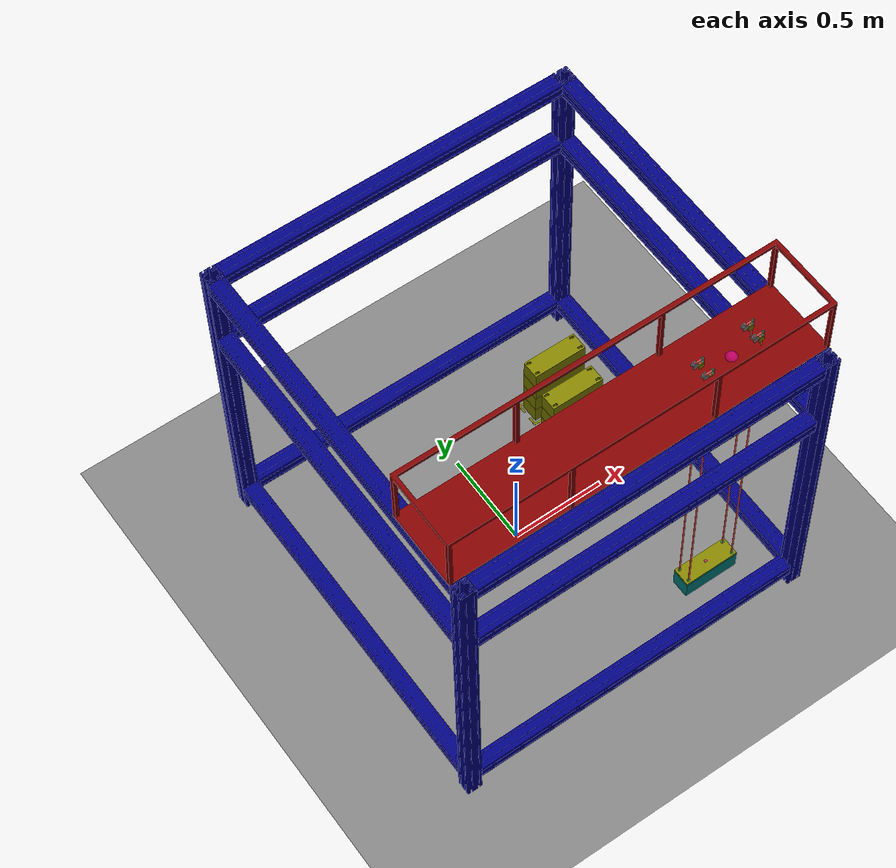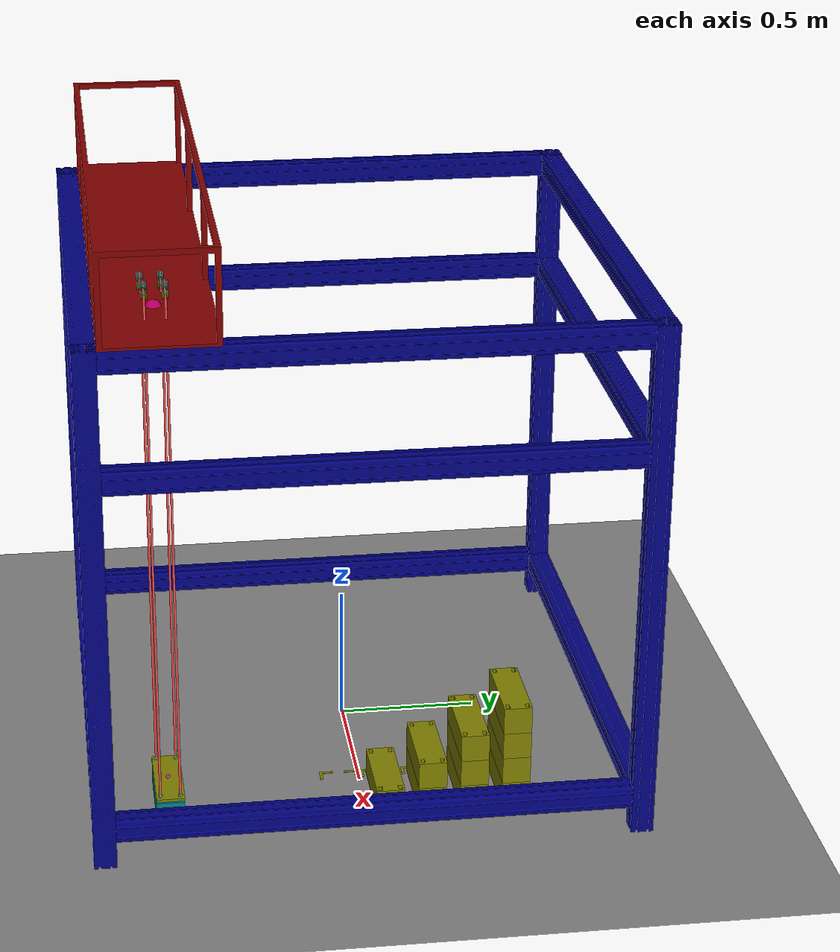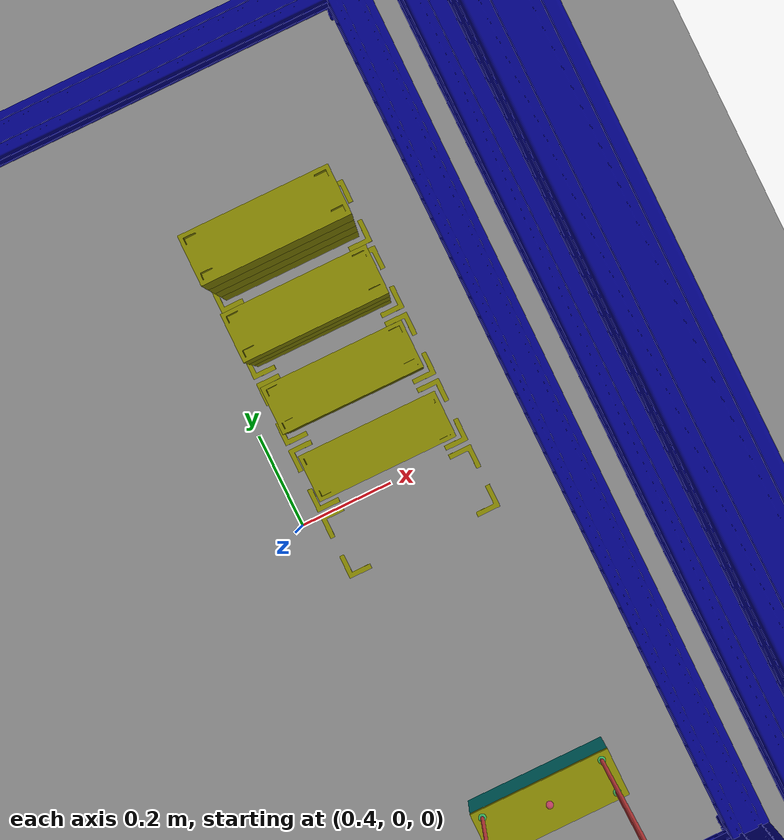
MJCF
<?xml version="1.0" encoding="utf-8"?>
<mujoco model="qc_anti_sway_alignment">
  <compiler angle="radian" meshdir="meshes" autolimits="true"/>
  <option timestep="0.002" gravity="0 0 -9.81" wind="0 0 0" integrator="implicitfast" density="1.225" viscosity="1.8e-5"/>
  <visual>
    <global realtime="1"/>
    <quality shadowsize="16384" numslices="28" offsamples="4"/>
    <headlight diffuse="1 1 1" specular="0.5 0.5 0.5" active="1"/>
    <rgba fog="1 0 0 1" haze="1 1 1 1"/>
  </visual>
  <asset>
    <texture name="plane" type="2d" builtin="checker" rgb1=".1 .1 .1" rgb2=".9 .9 .9" width="512" height="512" mark="cross" markrgb=".8 .8 .8"/>
    <material name="plane" reflectance="0.3" texture="plane" texrepeat="1 1" texuniform="true"/>
    <material name="box" rgba="0 0.5 0 1" emission="0"/>
    <!-- gantry -->
    <mesh name="gantry - 8080-L1800-3_mesh" file="gantry - 8080-L1800-3.STL" scale="1 1 1"/>
    <mesh name="gantry - 8080-L1800-1_mesh" file="gantry - 8080-L1800-1.STL" scale="1 1 1"/>
    <mesh name="gantry - 8080-L1800-6_mesh" file="gantry - 8080-L1800-6.STL" scale="1 1 1"/>
    <mesh name="gantry - 8080-L1800-12_mesh" file="gantry - 8080-L1800-12.STL" scale="1 1 1"/>
    <mesh name="gantry - 8080-L1900-2_mesh" file="gantry - 8080-L1900-2.STL" scale="1 1 1"/>
    <mesh name="gantry - 8080-L1800-9_mesh" file="gantry - 8080-L1800-9.STL" scale="1 1 1"/>
    <mesh name="gantry - 8080-L1800-2_mesh" file="gantry - 8080-L1800-2.STL" scale="1 1 1"/>
    <mesh name="gantry - 8080-L1900-1_mesh" file="gantry - 8080-L1900-1.STL" scale="1 1 1"/>
    <mesh name="gantry - 8080-L1800-5_mesh" file="gantry - 8080-L1800-5.STL" scale="1 1 1"/>
    <mesh name="gantry - 8080-L1900-3_mesh" file="gantry - 8080-L1900-3.STL" scale="1 1 1"/>
    <mesh name="gantry - 8080-L1800-11_mesh" file="gantry - 8080-L1800-11.STL" scale="1 1 1"/>
    <mesh name="gantry - 8080-L1900-4_mesh" file="gantry - 8080-L1900-4.STL" scale="1 1 1"/>
    <mesh name="gantry - 8080-L1800-8_mesh" file="gantry - 8080-L1800-8.STL" scale="1 1 1"/>
    <mesh name="gantry - 8080-L1800-4_mesh" file="gantry - 8080-L1800-4.STL" scale="1 1 1"/>
    <mesh name="gantry - 8080-L1800-10_mesh" file="gantry - 8080-L1800-10.STL" scale="1 1 1"/>
    <mesh name="gantry - 8080-L1800-7_mesh" file="gantry - 8080-L1800-7.STL" scale="1 1 1"/>
    <!-- trolley -->
    <mesh name="trolley - pulley-2_mesh" file="trolley - pulley-2.STL" scale="1 1 1"/>
    <mesh name="trolley - trolley_plane-1_mesh" file="trolley - trolley_plane-1.STL" scale="1 1 1"/>
    <mesh name="trolley - trolley_anchor_ball-2_mesh" file="trolley - trolley_anchor_ball-2.STL" scale="1 1 1"/>
    <mesh name="trolley - pulley-6_mesh" file="trolley - pulley-6.STL" scale="1 1 1"/>
    <mesh name="trolley - trolley_anchor_ball-3_mesh" file="trolley - trolley_anchor_ball-3.STL" scale="1 1 1"/>
    <mesh name="trolley - trolley_anchor_ball-4_mesh" file="trolley - trolley_anchor_ball-4.STL" scale="1 1 1"/>
    <mesh name="trolley - pulley-8_mesh" file="trolley - pulley-8.STL" scale="1 1 1"/>
    <mesh name="trolley - pulley-4_mesh" file="trolley - pulley-4.STL" scale="1 1 1"/>
    <mesh name="trolley - pulley-3_mesh" file="trolley - pulley-3.STL" scale="1 1 1"/>
    <mesh name="trolley - pulley-1_mesh" file="trolley - pulley-1.STL" scale="1 1 1"/>
    <mesh name="trolley - pulley-5_mesh" file="trolley - pulley-5.STL" scale="1 1 1"/>
    <mesh name="trolley - pulley-7_mesh" file="trolley - pulley-7.STL" scale="1 1 1"/>
    <mesh name="trolley - trolley_anchor_ball-1_mesh" file="trolley - trolley_anchor_ball-1.STL" scale="1 1 1"/>
    <!-- spreader -->
    <mesh name="spreader - spreader_plane-1_mesh" file="spreader - spreader_plane-1.STL" scale="1 1 1"/>
    <mesh name="spreader - spreader_anchor_ball-1_mesh" file="spreader - spreader_anchor_ball-1.STL" scale="1 1 1"/>
    <mesh name="spreader - spreader_anchor_ball-3_mesh" file="spreader - spreader_anchor_ball-3.STL" scale="1 1 1"/>
    <mesh name="spreader - container-1_mesh" file="spreader - container-1.STL" scale="1 1 1"/>
    <mesh name="spreader - spreader_anchor_ball-4_mesh" file="spreader - spreader_anchor_ball-4.STL" scale="1 1 1"/>
    <mesh name="spreader - spreader_anchor_ball-2_mesh" file="spreader - spreader_anchor_ball-2.STL" scale="1 1 1"/>
    <!-- container_stack -->
    <mesh name="container_stack - L-Marker-26_mesh" file="container_stack - L-Marker-26.STL" scale="1 1 1"/>
    <mesh name="container_stack - L-Marker-31_mesh" file="container_stack - L-Marker-31.STL" scale="1 1 1"/>
    <mesh name="container_stack - L-Marker-1_mesh" file="container_stack - L-Marker-1.STL" scale="1 1 1"/>
    <mesh name="container_stack - L-Marker-22_mesh" file="container_stack - L-Marker-22.STL" scale="1 1 1"/>
    <mesh name="container_stack - L-Marker-24_mesh" file="container_stack - L-Marker-24.STL" scale="1 1 1"/>
    <mesh name="container_stack - L-Marker-34_mesh" file="container_stack - L-Marker-34.STL" scale="1 1 1"/>
    <mesh name="container_stack - container-8_mesh" file="container_stack - container-8.STL" scale="1 1 1"/>
    <mesh name="container_stack - container-1_mesh" file="container_stack - container-1.STL" scale="1 1 1"/>
    <mesh name="container_stack - container-10_mesh" file="container_stack - container-10.STL" scale="1 1 1"/>
    <mesh name="container_stack - L-Marker-30_mesh" file="container_stack - L-Marker-30.STL" scale="1 1 1"/>
    <mesh name="container_stack - container-3_mesh" file="container_stack - container-3.STL" scale="1 1 1"/>
    <mesh name="container_stack - L-Marker-32_mesh" file="container_stack - L-Marker-32.STL" scale="1 1 1"/>
    <mesh name="container_stack - L-Marker-35_mesh" file="container_stack - L-Marker-35.STL" scale="1 1 1"/>
    <mesh name="container_stack - L-Marker-27_mesh" file="container_stack - L-Marker-27.STL" scale="1 1 1"/>
    <mesh name="container_stack - container-9_mesh" file="container_stack - container-9.STL" scale="1 1 1"/>
    <mesh name="container_stack - L-Marker-4_mesh" file="container_stack - L-Marker-4.STL" scale="1 1 1"/>
    <mesh name="container_stack - container-2_mesh" file="container_stack - container-2.STL" scale="1 1 1"/>
    <mesh name="container_stack - container-7_mesh" file="container_stack - container-7.STL" scale="1 1 1"/>
    <mesh name="container_stack - L-Marker-36_mesh" file="container_stack - L-Marker-36.STL" scale="1 1 1"/>
    <mesh name="container_stack - L-Marker-28_mesh" file="container_stack - L-Marker-28.STL" scale="1 1 1"/>
    <mesh name="container_stack - L-Marker-23_mesh" file="container_stack - L-Marker-23.STL" scale="1 1 1"/>
    <mesh name="container_stack - container-4_mesh" file="container_stack - container-4.STL" scale="1 1 1"/>
    <mesh name="container_stack - L-Marker-29_mesh" file="container_stack - L-Marker-29.STL" scale="1 1 1"/>
    <mesh name="container_stack - L-Marker-33_mesh" file="container_stack - L-Marker-33.STL" scale="1 1 1"/>
    <mesh name="container_stack - L-Marker-25_mesh" file="container_stack - L-Marker-25.STL" scale="1 1 1"/>
    <mesh name="container_stack - L-Marker-3_mesh" file="container_stack - L-Marker-3.STL" scale="1 1 1"/>
    <mesh name="container_stack - L-Marker-2_mesh" file="container_stack - L-Marker-2.STL" scale="1 1 1"/>
    <mesh name="container_stack - container-5_mesh" file="container_stack - container-5.STL" scale="1 1 1"/>
    <mesh name="container_stack - L-Marker-21_mesh" file="container_stack - L-Marker-21.STL" scale="1 1 1"/>
    <mesh name="container_stack - container-6_mesh" file="container_stack - container-6.STL" scale="1 1 1"/>
  </asset>
  <default>
    <geom solref=".5e-4" solimp="0.9 0.99 1e-4" fluidcoef="0.5 0.25 0.5 2.0 1.0"/>
    <default class="card">
      <geom type="mesh" mesh="card" mass="1.84e-4" fluidshape="ellipsoid" contype="0" conaffinity="0"/>
    </default>
    <default class="collision">
      <geom type="box" mass="0" size="0.047 0.032 .00035" group="3" friction=".1"/>
    </default>
  </default>
  <worldbody>
    <geom name="floor" pos="0 0 0" size="10 10 .1" type="plane" material="plane" condim="3"/>
    <light directional="true" ambient=".3 .3 .3" pos="30 30 30" dir="0 -2 -1" diffuse=".5 .5 .5" specular=".5 .5 .5"/>
    <body name="gantry" pos="0 0 0">
      <body name="part_00_gantry - 8080-L1800-3" pos="0 0 0" euler="0 0 0">
        <geom name="geom_00_gantry - 8080-L1800-3" type="mesh" mesh="gantry - 8080-L1800-3_mesh" pos="0 0 0" mass="8.20643687132272" rgba="0 0 0.5 1"/>
      </body>
      <body name="part_01_gantry - 8080-L1800-1" pos="0 0 0" euler="0 0 0">
        <geom name="geom_01_gantry - 8080-L1800-1" type="mesh" mesh="gantry - 8080-L1800-1_mesh" pos="0 0 0" mass="8.206436440465545" rgba="0 0 0.5 1"/>
      </body>
      <body name="part_02_gantry - 8080-L1800-6" pos="0 0 0" euler="0 0 0">
        <geom name="geom_02_gantry - 8080-L1800-6" type="mesh" mesh="gantry - 8080-L1800-6_mesh" pos="0 0 0" mass="8.206435252381262" rgba="0 0 0.5 1"/>
      </body>
      <body name="part_03_gantry - 8080-L1800-12" pos="0 0 0" euler="0 0 0">
        <geom name="geom_03_gantry - 8080-L1800-12" type="mesh" mesh="gantry - 8080-L1800-12_mesh" pos="0 0 0" mass="8.206435837031654" rgba="0 0 0.5 1"/>
      </body>
      <body name="part_04_gantry - 8080-L1900-2" pos="0 0 0" euler="0 0 0">
        <geom name="geom_04_gantry - 8080-L1900-2" type="mesh" mesh="gantry - 8080-L1900-2_mesh" pos="0 0 0" mass="8.662366448847159" rgba="0 0 0.5 1"/>
      </body>
      <body name="part_05_gantry - 8080-L1800-9" pos="0 0 0" euler="0 0 0">
        <geom name="geom_05_gantry - 8080-L1800-9" type="mesh" mesh="gantry - 8080-L1800-9_mesh" pos="0 0 0" mass="8.206435406205692" rgba="0 0 0.5 1"/>
      </body>
      <body name="part_06_gantry - 8080-L1800-2" pos="0 0 0" euler="0 0 0">
        <geom name="geom_06_gantry - 8080-L1800-2" type="mesh" mesh="gantry - 8080-L1800-2_mesh" pos="0 0 0" mass="8.20643687132272" rgba="0 0 0.5 1"/>
      </body>
      <body name="part_07_gantry - 8080-L1900-1" pos="0 0 0" euler="0 0 0">
        <geom name="geom_07_gantry - 8080-L1900-1" type="mesh" mesh="gantry - 8080-L1900-1_mesh" pos="0 0 0" mass="8.662366448847159" rgba="0 0 0.5 1"/>
      </body>
      <body name="part_08_gantry - 8080-L1800-5" pos="0 0 0" euler="0 0 0">
        <geom name="geom_08_gantry - 8080-L1800-5" type="mesh" mesh="gantry - 8080-L1800-5_mesh" pos="0 0 0" mass="8.206434821520842" rgba="0 0 0.5 1"/>
      </body>
      <body name="part_09_gantry - 8080-L1900-3" pos="0 0 0" euler="0 0 0">
        <geom name="geom_09_gantry - 8080-L1900-3" type="mesh" mesh="gantry - 8080-L1900-3_mesh" pos="0 0 0" mass="8.662366448847159" rgba="0 0 0.5 1"/>
      </body>
      <body name="part_10_gantry - 8080-L1800-11" pos="0 0 0" euler="0 0 0">
        <geom name="geom_10_gantry - 8080-L1800-11" type="mesh" mesh="gantry - 8080-L1800-11_mesh" pos="0 0 0" mass="8.206435406205692" rgba="0 0 0.5 1"/>
      </body>
      <body name="part_11_gantry - 8080-L1900-4" pos="0 0 0" euler="0 0 0">
        <geom name="geom_11_gantry - 8080-L1900-4" type="mesh" mesh="gantry - 8080-L1900-4_mesh" pos="0 0 0" mass="8.662366448847159" rgba="0 0 0.5 1"/>
      </body>
      <body name="part_12_gantry - 8080-L1800-8" pos="0 0 0" euler="0 0 0">
        <geom name="geom_12_gantry - 8080-L1800-8" type="mesh" mesh="gantry - 8080-L1800-8_mesh" pos="0 0 0" mass="8.206435252381262" rgba="0 0 0.5 1"/>
      </body>
      <body name="part_13_gantry - 8080-L1800-4" pos="0 0 0" euler="0 0 0">
        <geom name="geom_13_gantry - 8080-L1800-4" type="mesh" mesh="gantry - 8080-L1800-4_mesh" pos="0 0 0" mass="8.206436440465545" rgba="0 0 0.5 1"/>
      </body>
      <body name="part_14_gantry - 8080-L1800-10" pos="0 0 0" euler="0 0 0">
        <geom name="geom_14_gantry - 8080-L1800-10" type="mesh" mesh="gantry - 8080-L1800-10_mesh" pos="0 0 0" mass="8.206435837031654" rgba="0 0 0.5 1"/>
      </body>
      <body name="part_15_gantry - 8080-L1800-7" pos="0 0 0" euler="0 0 0">
        <geom name="geom_15_gantry - 8080-L1800-7" type="mesh" mesh="gantry - 8080-L1800-7_mesh" pos="0 0 0" mass="8.206434821520842" rgba="0 0 0.5 1"/>
      </body>
      <body name="trolley" pos="0 -0.7 1.9">
        <joint type="slide" name="trolley_joint" pos="0 0 0" axis="0 1 0" damping="0.2" frictionloss="0" stiffness="0" range="-0.08 1.48"/>
        <body name="part_00_trolley - pulley-2" pos="0 0 0" euler="0 0 0">
          <geom name="geom_00_trolley - pulley-2" type="mesh" mesh="trolley - pulley-2_mesh" pos="0 0 0" mass="0.027111797859617568" rgba="0.5 0.5 0 1"/>
        </body>
        <body name="part_01_trolley - trolley_plane-1" pos="0 0 0" euler="0 0 0">
          <geom name="geom_01_trolley - trolley_plane-1" type="mesh" mesh="trolley - trolley_plane-1_mesh" pos="0 0 0" mass="28.76275760652507" rgba="0.5 0 0 1"/>
        </body>
        <body name="part_02_trolley - trolley_anchor_ball-2" pos="0 0 0" euler="0 0 0">
          <geom name="geom_02_trolley - trolley_anchor_ball-2" type="mesh" mesh="trolley - trolley_anchor_ball-2_mesh" pos="0 0 0" mass="0.0014100498050014054" rgba="0.5 0 0 1"/>
        </body>

        <body name="part_04_trolley - trolley_anchor_ball-3" pos="0 0 0" euler="0 0 0">
          <geom name="geom_04_trolley - trolley_anchor_ball-3" type="mesh" mesh="trolley - trolley_anchor_ball-3_mesh" pos="0 0 0" mass="0.0014100497818406016" rgba="0.5 0 0 1"/>
        </body>
        <body name="part_05_trolley - trolley_anchor_ball-4" pos="0 0 0" euler="0 0 0">
          <geom name="geom_05_trolley - trolley_anchor_ball-4" type="mesh" mesh="trolley - trolley_anchor_ball-4_mesh" pos="0 0 0" mass="0.001410049782437572" rgba="0.5 0 0 1"/>
        </body>

        <body name="part_07_trolley - pulley-4" pos="0 0 0" euler="0 0 0">
          <geom name="geom_07_trolley - pulley-4" type="mesh" mesh="trolley - pulley-4_mesh" pos="0 0 0" mass="0.027111794590652136" rgba="0.5 0.5 0 1"/>
        </body>
        <body name="part_08_trolley - pulley-3" pos="0 0 0" euler="0 0 0">
          <geom name="geom_08_trolley - pulley-3" type="mesh" mesh="trolley - pulley-3_mesh" pos="0 0 0" mass="0.027111794594472015" rgba="0.5 0.5 0 1"/>
        </body>
        <body name="part_09_trolley - pulley-1" pos="0 0 0" euler="0 0 0">
          <geom name="geom_09_trolley - pulley-1" type="mesh" mesh="trolley - pulley-1_mesh" pos="0 0 0" mass="0.027111797863437353" rgba="0.5 0.5 0 1"/>
        </body>

        <body name="part_12_trolley - trolley_anchor_ball-1" pos="0 0 0" euler="0 0 0">
          <geom name="geom_12_trolley - trolley_anchor_ball-1" type="mesh" mesh="trolley - trolley_anchor_ball-1_mesh" pos="0 0 0" mass="0.0014100498021130147" rgba="0.5 0 0 1"/>
        </body>

        <body name="hoist" pos="0 0 0" euler="0 0 0">
          <joint type="slide" name="hoist_joint" pos="0 0 0" axis="-1 0 0" damping="0.4" frictionloss="0.015" stiffness="0" range="0 0.8"/>

            <body name="part_03_trolley - pulley-6" pos="0 0 0" euler="0 0 0">
                <geom name="geom_03_trolley - pulley-6" type="mesh" mesh="trolley - pulley-6_mesh" pos="0 0 0" mass="0.02711179618761414" rgba="0.5 0.5 0.5 1"/>
            </body>
            <site name="anchor_pm_4_0" pos="0.698 0.035 0.102" size="0.006"
                rgba="1 0.5 0.8 0.5" />
            <site name="anchor_pm_4_1" pos="0.698 0.035 0.126" size="0.006"
                rgba="1 0.5 0.8 0.5" />

            <body name="part_06_trolley - pulley-8" pos="0 0 0" euler="0 0 0">
                <geom name="geom_06_trolley - pulley-8" type="mesh" mesh="trolley - pulley-8_mesh" pos="0 0 0" mass="0.02711179284545186" rgba="0.5 0.5 0.5 1"/>
            </body>
            <site name="anchor_pm_1_0" pos="0.438 0.035 0.042" size="0.006"
                rgba="1 0.5 0.8 0.5" />
            <site name="anchor_pm_1_1" pos="0.438 0.035 0.066" size="0.006"
                rgba="1 0.5 0.8 0.5" />

            <body name="part_10_trolley - pulley-5" pos="0 0 0" euler="0 0 0">
                <geom name="geom_10_trolley - pulley-5" type="mesh" mesh="trolley - pulley-5_mesh" pos="0 0 0" mass="0.027111796191433887" rgba="0.5 0.5 0.5 1"/>
            </body>
            <site name="anchor_pm_3_0" pos="0.698 -0.035 0.102" size="0.006"
                rgba="1 0.5 0.8 0.5" />
            <site name="anchor_pm_3_1" pos="0.698 -0.035 0.126" size="0.006"
                rgba="1 0.5 0.8 0.5" />

            <body name="part_11_trolley - pulley-7" pos="0 0 0" euler="0 0 0">
                <geom name="geom_11_trolley - pulley-7" type="mesh" mesh="trolley - pulley-7_mesh" pos="0 0 0" mass="0.02711179284927182" rgba="0.5 0.5 0.5 1"/>
            </body>
            <site name="anchor_pm_2_0" pos="0.438 -0.035 0.042" size="0.006"
                rgba="1 0.5 0.8 0.5" />
            <site name="anchor_pm_2_1" pos="0.438 -0.035 0.066" size="0.006"
                rgba="1 0.5 0.8 0.5" />
        </body>
        <site name="anchor_drum_1" pos="0.48 0.035 0.066" size="0.008" rgba="0 1.0 0.8 0.5" />
        <site name="anchor_drum_2" pos="0.48 -0.035 0.066" size="0.008" rgba="0 1.0 0.8 0.5" />
        <site name="anchor_drum_3" pos="0.74 -0.035 0.126" size="0.008" rgba="0 1.0 0.8 0.5" />
        <site name="anchor_drum_4" pos="0.74 0.035 0.126" size="0.008" rgba="0 1.0 0.8 0.5" />

        <site name="anchor_ps_1" pos="0.48 0.035 0.042" size="0.008" rgba="0 1.0 0.8 0.5" />
        <site name="anchor_ps_2" pos="0.48 -0.035 0.042" size="0.008" rgba="0 1.0 0.8 0.5" />
        <site name="anchor_ps_3" pos="0.74 -0.035 0.102" size="0.008" rgba="0 1.0 0.8 0.5" />
        <site name="anchor_ps_4" pos="0.74 0.035 0.102" size="0.008" rgba="0 1.0 0.8 0.5" />

        <site name="trolley_center" pos="0.61 0.0 0.0" size="0.03" rgba="1.0 0.0 0.8 0.5" />

      </body>
    </body>

    <body name="spreader" pos="0.61 -0.7 0.125">
      <freejoint name="spreader_freejoint"/>
      <body name="part_00_spreader - spreader_plane-1" pos="0 0 0" euler="0 0 0">
        <geom name="geom_00_spreader - spreader_plane-1" type="mesh" mesh="spreader - spreader_plane-1_mesh" pos="0 0 0" mass="0.8539416257786026" rgba="0.5 0.5 0 1"/>
      </body>
      <body name="part_01_spreader - spreader_anchor_ball-1" pos="0 0 0" euler="0 0 0">
        <geom name="geom_01_spreader - spreader_anchor_ball-1" type="mesh" mesh="spreader - spreader_anchor_ball-1_mesh" pos="0 0 0" mass="9.024319406345237e-05" rgba="0.5 0.5 0 1"/>
      </body>
      <body name="part_02_spreader - spreader_anchor_ball-3" pos="0 0 0" euler="0 0 0">
        <geom name="geom_02_spreader - spreader_anchor_ball-3" type="mesh" mesh="spreader - spreader_anchor_ball-3_mesh" pos="0 0 0" mass="9.024319406345241e-05" rgba="0.5 0.5 0 1"/>
      </body>
      <body name="part_03_spreader - container-1" pos="0 0 0" euler="0 0 0">
        <geom name="geom_03_spreader - container-1" type="mesh" mesh="spreader - container-1_mesh" pos="0 0 0" mass="8.027424632463292" rgba="0 0.5 0.5 1"/>
      </body>
      <body name="part_04_spreader - spreader_anchor_ball-4" pos="0 0 0" euler="0 0 0">
        <geom name="geom_04_spreader - spreader_anchor_ball-4" type="mesh" mesh="spreader - spreader_anchor_ball-4_mesh" pos="0 0 0" mass="9.024319406345237e-05" rgba="0.5 0.5 0 1"/>
      </body>
      <body name="part_05_spreader - spreader_anchor_ball-2" pos="0 0 0" euler="0 0 0">
        <geom name="geom_05_spreader - spreader_anchor_ball-2" type="mesh" mesh="spreader - spreader_anchor_ball-2_mesh" pos="0 0 0" mass="9.024319406345241e-05" rgba="0.5 0.5 0 1"/>
      </body>
      <site name="anchor_spreader_4" pos="0.13 0.035 0.002" size="0.008" rgba="0 1.0 0.8 0.5"/>
      <site name="anchor_spreader_3" pos="0.13 -0.035 0.002" size="0.008" rgba="0 1.0 0.8 0.5"/>
      <site name="anchor_spreader_2" pos="-0.13 -0.035 0.002" size="0.008" rgba="0 1.0 0.8 0.5"/>
      <site name="anchor_spreader_1" pos="-0.13 0.035 0.002" size="0.008" rgba="0 1.0 0.8 0.5"/>
      <site name="spreader_center" pos="0 0 0.002" size="0.008" rgba="1.0 0.0 0.8 0.5"/>
    </body>

    <body name="container_stack" pos="0.76 0.58 0" euler="0 0 3.1415">
      <body name="part_00_container_stack - L-Marker-26" pos="0 0 0" euler="0 0 0">
        <geom name="geom_00_container_stack - L-Marker-26" type="mesh" mesh="container_stack - L-Marker-26_mesh" pos="0 0 0" mass="0.004859995789099179" rgba="0.5 0.5 0 1"/>
      </body>
      <body name="part_01_container_stack - L-Marker-31" pos="0 0 0" euler="0 0 0">
        <geom name="geom_01_container_stack - L-Marker-31" type="mesh" mesh="container_stack - L-Marker-31_mesh" pos="0 0 0" mass="0.004859995789099234" rgba="0.5 0.5 0 1"/>
      </body>
      <body name="part_02_container_stack - L-Marker-1" pos="0 0 0" euler="0 0 0">
        <geom name="geom_02_container_stack - L-Marker-1" type="mesh" mesh="container_stack - L-Marker-1_mesh" pos="0 0 0" mass="0.0048599996112472605" rgba="0.5 0.5 0 1"/>
      </body>
      <body name="part_03_container_stack - L-Marker-22" pos="0 0 0" euler="0 0 0">
        <geom name="geom_03_container_stack - L-Marker-22" type="mesh" mesh="container_stack - L-Marker-22_mesh" pos="0 0 0" mass="0.0048599971972590455" rgba="0.5 0.5 0 1"/>
      </body>
      <body name="part_04_container_stack - L-Marker-24" pos="0 0 0" euler="0 0 0">
        <geom name="geom_04_container_stack - L-Marker-24" type="mesh" mesh="container_stack - L-Marker-24_mesh" pos="0 0 0" mass="0.0048600116811887235" rgba="0.5 0.5 0 1"/>
      </body>
      <body name="part_05_container_stack - L-Marker-34" pos="0 0 0" euler="0 0 0">
        <geom name="geom_05_container_stack - L-Marker-34" type="mesh" mesh="container_stack - L-Marker-34_mesh" pos="0 0 0" mass="0.004859998806584494" rgba="0.5 0.5 0 1"/>
      </body>
      <body name="part_06_container_stack - container-8" pos="0 0 0" euler="0 0 0">
        <geom name="geom_06_container_stack - container-8" type="mesh" mesh="container_stack - container-8_mesh" pos="0 0 0" mass="8.027424102633104" rgba="0.5 0.5 0 1"/>
      </body>
      <body name="part_07_container_stack - container-1" pos="0 0 0" euler="0 0 0">
        <geom name="geom_07_container_stack - container-1" type="mesh" mesh="container_stack - container-1_mesh" pos="0 0 0" mass="8.02742485145226" rgba="0.5 0.5 0 1"/>
      </body>
      <body name="part_08_container_stack - container-10" pos="0 0 0" euler="0 0 0">
        <geom name="geom_08_container_stack - container-10" type="mesh" mesh="container_stack - container-10_mesh" pos="0 0 0" mass="8.027424102633104" rgba="0.5 0.5 0 1"/>
      </body>
      <body name="part_09_container_stack - L-Marker-30" pos="0 0 0" euler="0 0 0">
        <geom name="geom_09_container_stack - L-Marker-30" type="mesh" mesh="container_stack - L-Marker-30_mesh" pos="0 0 0" mass="0.004859994179775256" rgba="0.5 0.5 0 1"/>
      </body>
      <body name="part_10_container_stack - container-3" pos="0 0 0" euler="0 0 0">
        <geom name="geom_10_container_stack - container-3" type="mesh" mesh="container_stack - container-3_mesh" pos="0 0 0" mass="8.027424190019461" rgba="0.5 0.5 0 1"/>
      </body>
      <body name="part_11_container_stack - L-Marker-32" pos="0 0 0" euler="0 0 0">
        <geom name="geom_11_container_stack - L-Marker-32" type="mesh" mesh="container_stack - L-Marker-32_mesh" pos="0 0 0" mass="0.004860008663700436" rgba="0.5 0.5 0 1"/>
      </body>
      <body name="part_12_container_stack - L-Marker-35" pos="0 0 0" euler="0 0 0">
        <geom name="geom_12_container_stack - L-Marker-35" type="mesh" mesh="container_stack - L-Marker-35_mesh" pos="0 0 0" mass="0.004859997197259063" rgba="0.5 0.5 0 1"/>
      </body>
      <body name="part_13_container_stack - L-Marker-27" pos="0 0 0" euler="0 0 0">
        <geom name="geom_13_container_stack - L-Marker-27" type="mesh" mesh="container_stack - L-Marker-27_mesh" pos="0 0 0" mass="0.00485999417977525" rgba="0.5 0.5 0 1"/>
      </body>
      <body name="part_14_container_stack - container-9" pos="0 0 0" euler="0 0 0">
        <geom name="geom_14_container_stack - container-9" type="mesh" mesh="container_stack - container-9_mesh" pos="0 0 0" mass="8.027424706130132" rgba="0.5 0.5 0 1"/>
      </body>
      <body name="part_15_container_stack - L-Marker-4" pos="0 0 0" euler="0 0 0">
        <geom name="geom_15_container_stack - L-Marker-4" type="mesh" mesh="container_stack - L-Marker-4_mesh" pos="0 0 0" mass="0.004859997197259108" rgba="0.5 0.5 0 1"/>
      </body>
      <body name="part_16_container_stack - container-2" pos="0 0 0" euler="0 0 0">
        <geom name="geom_16_container_stack - container-2" type="mesh" mesh="container_stack - container-2_mesh" pos="0 0 0" mass="8.027424190019461" rgba="0.5 0.5 0 1"/>
      </body>
      <body name="part_17_container_stack - container-7" pos="0 0 0" euler="0 0 0">
        <geom name="geom_17_container_stack - container-7" type="mesh" mesh="container_stack - container-7_mesh" pos="0 0 0" mass="8.027424160568817" rgba="0.5 0.5 0 1"/>
      </body>
      <body name="part_18_container_stack - L-Marker-36" pos="0 0 0" euler="0 0 0">
        <geom name="geom_18_container_stack - L-Marker-36" type="mesh" mesh="container_stack - L-Marker-36_mesh" pos="0 0 0" mass="0.004859998806584528" rgba="0.5 0.5 0 1"/>
      </body>
      <body name="part_19_container_stack - L-Marker-28" pos="0 0 0" euler="0 0 0">
        <geom name="geom_19_container_stack - L-Marker-28" type="mesh" mesh="container_stack - L-Marker-28_mesh" pos="0 0 0" mass="0.004859995789099215" rgba="0.5 0.5 0 1"/>
      </body>
      <body name="part_20_container_stack - L-Marker-23" pos="0 0 0" euler="0 0 0">
        <geom name="geom_20_container_stack - L-Marker-23" type="mesh" mesh="container_stack - L-Marker-23_mesh" pos="0 0 0" mass="0.004859998806584513" rgba="0.5 0.5 0 1"/>
      </body>
      <body name="part_21_container_stack - container-4" pos="0 0 0" euler="0 0 0">
        <geom name="geom_21_container_stack - container-4" type="mesh" mesh="container_stack - container-4_mesh" pos="0 0 0" mass="8.027426604007774" rgba="0.5 0.5 0 1"/>
      </body>
      <body name="part_22_container_stack - L-Marker-29" pos="0 0 0" euler="0 0 0">
        <geom name="geom_22_container_stack - L-Marker-29" type="mesh" mesh="container_stack - L-Marker-29_mesh" pos="0 0 0" mass="0.004860002226399804" rgba="0.5 0.5 0 1"/>
      </body>
      <body name="part_23_container_stack - L-Marker-33" pos="0 0 0" euler="0 0 0">
        <geom name="geom_23_container_stack - L-Marker-33" type="mesh" mesh="container_stack - L-Marker-33_mesh" pos="0 0 0" mass="0.004860002025235525" rgba="0.5 0.5 0 1"/>
      </body>
      <body name="part_24_container_stack - L-Marker-25" pos="0 0 0" euler="0 0 0">
        <geom name="geom_24_container_stack - L-Marker-25" type="mesh" mesh="container_stack - L-Marker-25_mesh" pos="0 0 0" mass="0.0048599990077494515" rgba="0.5 0.5 0 1"/>
      </body>
      <body name="part_25_container_stack - L-Marker-3" pos="0 0 0" euler="0 0 0">
        <geom name="geom_25_container_stack - L-Marker-3" type="mesh" mesh="container_stack - L-Marker-3_mesh" pos="0 0 0" mass="0.004860000214744324" rgba="0.5 0.5 0 1"/>
      </body>
      <body name="part_26_container_stack - L-Marker-2" pos="0 0 0" euler="0 0 0">
        <geom name="geom_26_container_stack - L-Marker-2" type="mesh" mesh="container_stack - L-Marker-2_mesh" pos="0 0 0" mass="0.004859996593762344" rgba="0.5 0.5 0 1"/>
      </body>
      <body name="part_27_container_stack - container-5" pos="0 0 0" euler="0 0 0">
        <geom name="geom_27_container_stack - container-5" type="mesh" mesh="container_stack - container-5_mesh" pos="0 0 0" mass="8.027424764065895" rgba="0.5 0.5 0 1"/>
      </body>
      <body name="part_28_container_stack - L-Marker-21" pos="0 0 0" euler="0 0 0">
        <geom name="geom_28_container_stack - L-Marker-21" type="mesh" mesh="container_stack - L-Marker-21_mesh" pos="0 0 0" mass="0.004860005243886576" rgba="0.5 0.5 0 1"/>
      </body>
      <body name="part_29_container_stack - container-6" pos="0 0 0" euler="0 0 0">
        <geom name="geom_29_container_stack - container-6" type="mesh" mesh="container_stack - container-6_mesh" pos="0 0 0" mass="8.027425367562971" rgba="0.5 0.5 0 1"/>
      </body>
    </body>
  </worldbody>

  <equality>
        <tendon tendon1="tendon1" polycoef="0 1 0 0 0" />
        <tendon tendon1="tendon2" polycoef="0 1 0 0 0" />
        <tendon tendon1="tendon3" polycoef="0 1 0 0 0" />
        <tendon tendon1="tendon4" polycoef="0 1 0 0 0" />
  </equality>

    <tendon>
        <spatial name="tendon1" width="0.004" rgba="0.95 0.3 0.3 1">
            <site site="anchor_drum_1" />
            <site site="anchor_pm_1_1" />
            <site site="anchor_pm_1_0" />
            <site site="anchor_ps_1" />
            <site site="anchor_spreader_1" />
        </spatial>

        <spatial name="tendon2" width="0.004" rgba="0.95 0.3 0.3 1">
            <site site="anchor_drum_2" />
            <site site="anchor_pm_2_1" />
            <site site="anchor_pm_2_0" />
            <site site="anchor_ps_2" />
            <site site="anchor_spreader_2" />
        </spatial>

        <spatial name="tendon3" width="0.004" rgba="0.95 0.3 0.3 1">
            <site site="anchor_drum_3" />
            <site site="anchor_pm_3_1" />
            <site site="anchor_pm_3_0" />
            <site site="anchor_ps_3" />
            <site site="anchor_spreader_3" />
        </spatial>

        <spatial name="tendon4" width="0.004" rgba="0.95 0.3 0.3 1">
            <site site="anchor_drum_4" />
            <site site="anchor_pm_4_1" />
            <site site="anchor_pm_4_0" />
            <site site="anchor_ps_4" />
            <site site="anchor_spreader_4" />
        </spatial>
    </tendon>

    <actuator>
      <position name="trolley_driver" kp="900" kv="50" joint="trolley_joint" ctrlrange="-0.08 1.48" />
      <position name="hoist_driver" kp="20000" kv="20" joint="hoist_joint" ctrlrange="0 0.8" />
    </actuator>
</mujoco>
